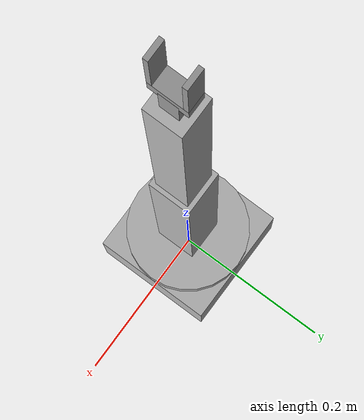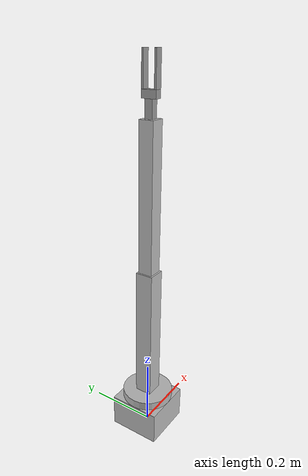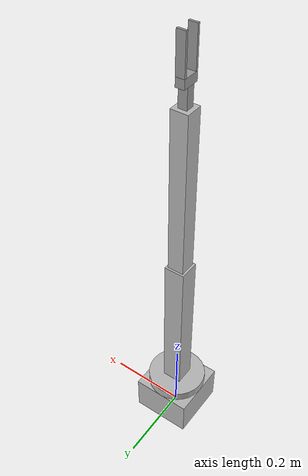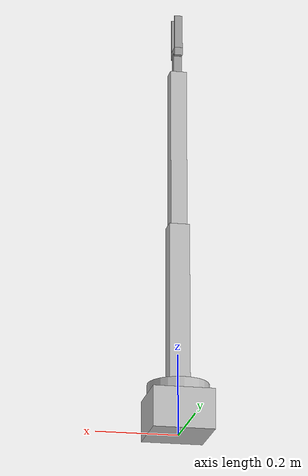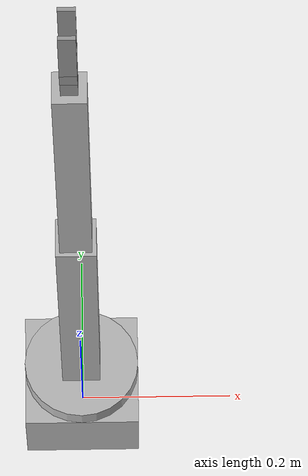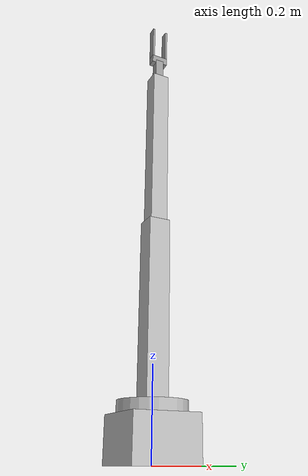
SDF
<?xml version='1.0'?>
<sdf version='1.6'>
  <model name='chessArm'>
    <link name='base'>
      <pose frame=''>0 0 0 0 -0 0</pose>
      <inertial>
        <pose frame=''>0 0 0 0 -0 0</pose>
        <mass>10</mass>
        <inertia>
          <ixx>0.166667</ixx>
          <ixy>0</ixy>
          <ixz>0</ixz>
          <iyy>0.166667</iyy>
          <iyz>0</iyz>
          <izz>0.166667</izz>
        </inertia>
      </inertial>
      <self_collide>0</self_collide>
      <enable_wind>0</enable_wind>
      <kinematic>0</kinematic>
      <visual name='base_fixed_joint_lump__chessArm__visual_visual'>
        <pose frame=''>0 0 0.05 0 -0 0</pose>
        <geometry>
          <box>
            <size>0.15 0.15 0.1</size>
          </box>
        </geometry>
        <transparency>0</transparency>
        <cast_shadows>1</cast_shadows>
      </visual>
      <collision name='base_fixed_joint_lump__chessArm__collision_collision'>
        <laser_retro>0</laser_retro>
        <max_contacts>10</max_contacts>
        <pose frame=''>0 0 0.05 0 -0 0</pose>
        <geometry>
          <box>
            <size>0.15 0.15 0.1</size>
          </box>
        </geometry>
        <surface>
          <friction>
            <ode>
              <mu>1</mu>
              <mu2>1</mu2>
              <fdir1>0 0 0</fdir1>
              <slip1>0</slip1>
              <slip2>0</slip2>
            </ode>
            <torsional>
              <coefficient>1</coefficient>
              <patch_radius>0</patch_radius>
              <surface_radius>0</surface_radius>
              <use_patch_radius>1</use_patch_radius>
              <ode>
                <slip>0</slip>
              </ode>
            </torsional>
          </friction>
          <bounce>
            <restitution_coefficient>0</restitution_coefficient>
            <threshold>1e+06</threshold>
          </bounce>
          <contact>
            <collide_without_contact>0</collide_without_contact>
            <collide_without_contact_bitmask>1</collide_without_contact_bitmask>
            <collide_bitmask>1</collide_bitmask>
            <ode>
              <soft_cfm>0</soft_cfm>
              <soft_erp>0.2</soft_erp>
              <kp>1e+13</kp>
              <kd>1</kd>
              <max_vel>0.01</max_vel>
              <min_depth>0</min_depth>
            </ode>
            <bullet>
              <split_impulse>1</split_impulse>
              <split_impulse_penetration_threshold>-0.01</split_impulse_penetration_threshold>
              <soft_cfm>0</soft_cfm>
              <soft_erp>0.2</soft_erp>
              <kp>1e+13</kp>
              <kd>1</kd>
            </bullet>
          </contact>
        </surface>
      </collision>
    </link>
    <link name='forearm'>
      <pose frame=''>-4e-06 0 0.525 0 -1e-05 -1e-05</pose>
      <inertial>
        <pose frame=''>0 0 0 0 -0 0</pose>
        <mass>0.01</mass>
        <inertia>
          <ixx>0.166667</ixx>
          <ixy>0</ixy>
          <ixz>0</ixz>
          <iyy>0.166667</iyy>
          <iyz>0</iyz>
          <izz>0.166667</izz>
        </inertia>
      </inertial>
      <self_collide>0</self_collide>
      <enable_wind>0</enable_wind>
      <kinematic>0</kinematic>
      <visual name='forearm_fixed_joint_lump__chessArm__visual_visual'>
        <pose frame=''>0 0 0.2 0 -0 0</pose>
        <geometry>
          <box>
            <size>0.04 0.04 0.4</size>
          </box>
        </geometry>
        <transparency>0</transparency>
        <cast_shadows>1</cast_shadows>
        <material>
          <emissive>0 0 0 1</emissive>
        </material>
      </visual>
      <collision name='forearm_fixed_joint_lump__chessArm__collision_collision'>
        <laser_retro>0</laser_retro>
        <max_contacts>10</max_contacts>
        <pose frame=''>0 0 0.2 0 -0 0</pose>
        <geometry>
          <box>
            <size>0.04 0.04 0.4</size>
          </box>
        </geometry>
        <surface>
          <friction>
            <ode>
              <mu>1</mu>
              <mu2>1</mu2>
              <fdir1>0 0 0</fdir1>
              <slip1>0</slip1>
              <slip2>0</slip2>
            </ode>
            <torsional>
              <coefficient>1</coefficient>
              <patch_radius>0</patch_radius>
              <surface_radius>0</surface_radius>
              <use_patch_radius>1</use_patch_radius>
              <ode>
                <slip>0</slip>
              </ode>
            </torsional>
          </friction>
          <bounce>
            <restitution_coefficient>0</restitution_coefficient>
            <threshold>1e+06</threshold>
          </bounce>
          <contact>
            <collide_without_contact>0</collide_without_contact>
            <collide_without_contact_bitmask>1</collide_without_contact_bitmask>
            <collide_bitmask>1</collide_bitmask>
            <ode>
              <soft_cfm>0</soft_cfm>
              <soft_erp>0.2</soft_erp>
              <kp>1e+13</kp>
              <kd>1</kd>
              <max_vel>0.01</max_vel>
              <min_depth>0</min_depth>
            </ode>
            <bullet>
              <split_impulse>1</split_impulse>
              <split_impulse_penetration_threshold>-0.01</split_impulse_penetration_threshold>
              <soft_cfm>0</soft_cfm>
              <soft_erp>0.2</soft_erp>
              <kp>1e+13</kp>
              <kd>1</kd>
            </bullet>
          </contact>
        </surface>
      </collision>
    </link>
    <link name='link_2'>
      <inertial>
        <mass>1</mass>
        <inertia>
          <ixx>0.166667</ixx>
          <ixy>0</ixy>
          <ixz>0</ixz>
          <iyy>0.166667</iyy>
          <iyz>0</iyz>
          <izz>0.166667</izz>
        </inertia>
        <pose frame=''>0 0 0 0 -0 0</pose>
      </inertial>
      <pose frame=''>-8e-06 0 0.95 0 -1e-05 -1e-05</pose>
      <gravity>1</gravity>
      <self_collide>0</self_collide>
      <kinematic>0</kinematic>
      <enable_wind>0</enable_wind>
      <visual name='visual'>
        <pose frame=''>0 0 0 0 -0 0</pose>
        <geometry>
          <box>
            <size>0.02 0.02 0.055</size>
          </box>
        </geometry>
        <material>
          <lighting>1</lighting>
          <script>
            <uri>file://media/materials/scripts/gazebo.material</uri>
            <name>Gazebo/Grey</name>
          </script>
          <shader type='vertex'>
            <normal_map>__default__</normal_map>
          </shader>
          <ambient>0.3 0.3 0.3 1</ambient>
          <diffuse>0.7 0.7 0.7 1</diffuse>
          <specular>0.01 0.01 0.01 1</specular>
          <emissive>0 0 0 1</emissive>
        </material>
        <transparency>0</transparency>
        <cast_shadows>1</cast_shadows>
      </visual>
      <collision name='collision'>
        <laser_retro>0</laser_retro>
        <max_contacts>10</max_contacts>
        <pose frame=''>0 0 0 0 -0 0</pose>
        <geometry>
          <box>
            <size>0.02 0.02 0.055</size>
          </box>
        </geometry>
        <surface>
          <friction>
            <ode>
              <mu>1</mu>
              <mu2>1</mu2>
              <fdir1>0 0 0</fdir1>
              <slip1>0</slip1>
              <slip2>0</slip2>
            </ode>
            <torsional>
              <coefficient>1</coefficient>
              <patch_radius>0</patch_radius>
              <surface_radius>0</surface_radius>
              <use_patch_radius>1</use_patch_radius>
              <ode>
                <slip>0</slip>
              </ode>
            </torsional>
          </friction>
          <bounce>
            <restitution_coefficient>0</restitution_coefficient>
            <threshold>1e+06</threshold>
          </bounce>
          <contact>
            <collide_without_contact>0</collide_without_contact>
            <collide_without_contact_bitmask>1</collide_without_contact_bitmask>
            <collide_bitmask>1</collide_bitmask>
            <ode>
              <soft_cfm>0</soft_cfm>
              <soft_erp>0.2</soft_erp>
              <kp>1e+13</kp>
              <kd>1</kd>
              <max_vel>0.01</max_vel>
              <min_depth>0</min_depth>
            </ode>
            <bullet>
              <split_impulse>1</split_impulse>
              <split_impulse_penetration_threshold>-0.01</split_impulse_penetration_threshold>
              <soft_cfm>0</soft_cfm>
              <soft_erp>0.2</soft_erp>
              <kp>1e+13</kp>
              <kd>1</kd>
            </bullet>
          </contact>
        </surface>
      </collision>
    </link>
    <link name='link_3'>
      <inertial>
        <mass>1</mass>
        <inertia>
          <ixx>0.166667</ixx>
          <ixy>0</ixy>
          <ixz>0</ixz>
          <iyy>0.166667</iyy>
          <iyz>0</iyz>
          <izz>0.166667</izz>
        </inertia>
        <pose frame=''>0 0 0 0 -0 0</pose>
      </inertial>
      <pose frame=''>-9e-06 0 0.98 0 -0 0</pose>
      <gravity>1</gravity>
      <self_collide>0</self_collide>
      <kinematic>0</kinematic>
      <enable_wind>0</enable_wind>
      <visual name='visual'>
        <pose frame=''>0 0 0 0 -0 0</pose>
        <geometry>
          <box>
            <size>0.02 0.04 0.02</size>
          </box>
        </geometry>
        <material>
          <lighting>1</lighting>
          <script>
            <uri>file://media/materials/scripts/gazebo.material</uri>
            <name>Gazebo/Grey</name>
          </script>
          <shader type='vertex'>
            <normal_map>__default__</normal_map>
          </shader>
          <ambient>0.3 0.3 0.3 1</ambient>
          <diffuse>0.7 0.7 0.7 1</diffuse>
          <specular>0.01 0.01 0.01 1</specular>
          <emissive>0 0 0 1</emissive>
        </material>
        <transparency>0</transparency>
        <cast_shadows>1</cast_shadows>
      </visual>
      <collision name='collision'>
        <laser_retro>0</laser_retro>
        <max_contacts>10</max_contacts>
        <pose frame=''>0 0 0 0 -0 0</pose>
        <geometry>
          <box>
            <size>0.02 0.04 0.02</size>
          </box>
        </geometry>
        <surface>
          <friction>
            <ode>
              <mu>1</mu>
              <mu2>1</mu2>
              <fdir1>0 0 0</fdir1>
              <slip1>0</slip1>
              <slip2>0</slip2>
            </ode>
            <torsional>
              <coefficient>1</coefficient>
              <patch_radius>0</patch_radius>
              <surface_radius>0</surface_radius>
              <use_patch_radius>1</use_patch_radius>
              <ode>
                <slip>0</slip>
              </ode>
            </torsional>
          </friction>
          <bounce>
            <restitution_coefficient>0</restitution_coefficient>
            <threshold>1e+06</threshold>
          </bounce>
          <contact>
            <collide_without_contact>0</collide_without_contact>
            <collide_without_contact_bitmask>1</collide_without_contact_bitmask>
            <collide_bitmask>1</collide_bitmask>
            <ode>
              <soft_cfm>0</soft_cfm>
              <soft_erp>0.2</soft_erp>
              <kp>1e+13</kp>
              <kd>1</kd>
              <max_vel>0.01</max_vel>
              <min_depth>0</min_depth>
            </ode>
            <bullet>
              <split_impulse>1</split_impulse>
              <split_impulse_penetration_threshold>-0.01</split_impulse_penetration_threshold>
              <soft_cfm>0</soft_cfm>
              <soft_erp>0.2</soft_erp>
              <kp>1e+13</kp>
              <kd>1</kd>
            </bullet>
          </contact>
        </surface>
      </collision>
    </link>
    <link name='link_4'>
      <inertial>
        <mass>1</mass>
        <inertia>
          <ixx>0.166667</ixx>
          <ixy>0</ixy>
          <ixz>0</ixz>
          <iyy>0.166667</iyy>
          <iyz>0</iyz>
          <izz>0.166667</izz>
        </inertia>
        <pose frame=''>0 0 0 0 -0 0</pose>
      </inertial>
      <pose frame=''>-9e-06 0.0175 1.0325 0 -0 0</pose>
      <gravity>1</gravity>
      <self_collide>0</self_collide>
      <kinematic>0</kinematic>
      <enable_wind>0</enable_wind>
      <visual name='visual'>
        <pose frame=''>0 0 0 0 -0 0</pose>
        <geometry>
          <box>
            <size>0.02 0.005 0.085</size>
          </box>
        </geometry>
        <material>
          <lighting>1</lighting>
          <script>
            <uri>file://media/materials/scripts/gazebo.material</uri>
            <name>Gazebo/Grey</name>
          </script>
          <shader type='vertex'>
            <normal_map>__default__</normal_map>
          </shader>
          <ambient>0.3 0.3 0.3 1</ambient>
          <diffuse>0.7 0.7 0.7 1</diffuse>
          <specular>0.01 0.01 0.01 1</specular>
          <emissive>0 0 0 1</emissive>
        </material>
        <transparency>0</transparency>
        <cast_shadows>1</cast_shadows>
      </visual>
      <collision name='collision'>
        <laser_retro>0</laser_retro>
        <max_contacts>10</max_contacts>
        <pose frame=''>0 0 0 0 -0 0</pose>
        <geometry>
          <box>
            <size>0.02 0.005 0.085</size>
          </box>
        </geometry>
        <surface>
          <friction>
            <ode>
              <mu>1</mu>
              <mu2>1</mu2>
              <fdir1>0 0 0</fdir1>
              <slip1>0</slip1>
              <slip2>0</slip2>
            </ode>
            <torsional>
              <coefficient>1</coefficient>
              <patch_radius>0</patch_radius>
              <surface_radius>0</surface_radius>
              <use_patch_radius>1</use_patch_radius>
              <ode>
                <slip>0</slip>
              </ode>
            </torsional>
          </friction>
          <bounce>
            <restitution_coefficient>0</restitution_coefficient>
            <threshold>1e+06</threshold>
          </bounce>
          <contact>
            <collide_without_contact>0</collide_without_contact>
            <collide_without_contact_bitmask>1</collide_without_contact_bitmask>
            <collide_bitmask>1</collide_bitmask>
            <ode>
              <soft_cfm>0</soft_cfm>
              <soft_erp>0.2</soft_erp>
              <kp>1e+13</kp>
              <kd>1</kd>
              <max_vel>0.01</max_vel>
              <min_depth>0</min_depth>
            </ode>
            <bullet>
              <split_impulse>1</split_impulse>
              <split_impulse_penetration_threshold>-0.01</split_impulse_penetration_threshold>
              <soft_cfm>0</soft_cfm>
              <soft_erp>0.2</soft_erp>
              <kp>1e+13</kp>
              <kd>1</kd>
            </bullet>
          </contact>
        </surface>
      </collision>
    </link>
    <link name='link_4_clone'>
      <inertial>
        <mass>1</mass>
        <inertia>
          <ixx>0.166667</ixx>
          <ixy>0</ixy>
          <ixz>0</ixz>
          <iyy>0.166667</iyy>
          <iyz>0</iyz>
          <izz>0.166667</izz>
        </inertia>
        <pose frame=''>0 0 0 0 -0 0</pose>
      </inertial>
      <pose frame=''>-9e-06 -0.0175 1.0325 0 -0 0</pose>
      <gravity>1</gravity>
      <self_collide>0</self_collide>
      <kinematic>0</kinematic>
      <enable_wind>0</enable_wind>
      <visual name='visual'>
        <pose frame=''>0 0 0 0 -0 0</pose>
        <geometry>
          <box>
            <size>0.02 0.005 0.085</size>
          </box>
        </geometry>
        <material>
          <lighting>1</lighting>
          <script>
            <uri>file://media/materials/scripts/gazebo.material</uri>
            <name>Gazebo/Grey</name>
          </script>
          <shader type='vertex'>
            <normal_map>__default__</normal_map>
          </shader>
          <ambient>0.3 0.3 0.3 1</ambient>
          <diffuse>0.7 0.7 0.7 1</diffuse>
          <specular>0.01 0.01 0.01 1</specular>
          <emissive>0 0 0 1</emissive>
        </material>
        <transparency>0</transparency>
        <cast_shadows>1</cast_shadows>
      </visual>
      <collision name='collision'>
        <laser_retro>0</laser_retro>
        <max_contacts>10</max_contacts>
        <pose frame=''>0 0 0 0 -0 0</pose>
        <geometry>
          <box>
            <size>0.02 0.005 0.085</size>
          </box>
        </geometry>
        <surface>
          <friction>
            <ode>
              <mu>1</mu>
              <mu2>1</mu2>
              <fdir1>0 0 0</fdir1>
              <slip1>0</slip1>
              <slip2>0</slip2>
            </ode>
            <torsional>
              <coefficient>1</coefficient>
              <patch_radius>0</patch_radius>
              <surface_radius>0</surface_radius>
              <use_patch_radius>1</use_patch_radius>
              <ode>
                <slip>0</slip>
              </ode>
            </torsional>
          </friction>
          <bounce>
            <restitution_coefficient>0</restitution_coefficient>
            <threshold>1e+06</threshold>
          </bounce>
          <contact>
            <collide_without_contact>0</collide_without_contact>
            <collide_without_contact_bitmask>1</collide_without_contact_bitmask>
            <collide_bitmask>1</collide_bitmask>
            <ode>
              <soft_cfm>0</soft_cfm>
              <soft_erp>0.2</soft_erp>
              <kp>1e+13</kp>
              <kd>1</kd>
              <max_vel>0.01</max_vel>
              <min_depth>0</min_depth>
            </ode>
            <bullet>
              <split_impulse>1</split_impulse>
              <split_impulse_penetration_threshold>-0.01</split_impulse_penetration_threshold>
              <soft_cfm>0</soft_cfm>
              <soft_erp>0.2</soft_erp>
              <kp>1e+13</kp>
              <kd>1</kd>
            </bullet>
          </contact>
        </surface>
      </collision>
    </link>
    <link name='swivel_base'>
      <pose frame=''>0 0 0.1125 0 -0 0</pose>
      <inertial>
        <pose frame=''>0 0 0 0 -0 0</pose>
        <mass>1</mass>
        <inertia>
          <ixx>0.145833</ixx>
          <ixy>0</ixy>
          <ixz>0</ixz>
          <iyy>0.145833</iyy>
          <iyz>0</iyz>
          <izz>0.125</izz>
        </inertia>
      </inertial>
      <self_collide>0</self_collide>
      <enable_wind>0</enable_wind>
      <kinematic>0</kinematic>
      <visual name='swivel_base_fixed_joint_lump__chessArm__visual_visual'>
        <pose frame=''>0 0 0 0 -0 0</pose>
        <geometry>
          <cylinder>
            <length>0.025</length>
            <radius>0.075</radius>
          </cylinder>
        </geometry>
        <transparency>0</transparency>
        <cast_shadows>1</cast_shadows>
      </visual>
      <collision name='swivel_base_fixed_joint_lump__chessArm__collision_collision'>
        <laser_retro>0</laser_retro>
        <max_contacts>10</max_contacts>
        <pose frame=''>0 0 0 0 -0 0</pose>
        <geometry>
          <cylinder>
            <radius>0.075</radius>
            <length>0.025</length>
          </cylinder>
        </geometry>
        <surface>
          <friction>
            <ode>
              <mu>1</mu>
              <mu2>1</mu2>
              <fdir1>0 0 0</fdir1>
              <slip1>0</slip1>
              <slip2>0</slip2>
            </ode>
            <torsional>
              <coefficient>1</coefficient>
              <patch_radius>0</patch_radius>
              <surface_radius>0</surface_radius>
              <use_patch_radius>1</use_patch_radius>
              <ode>
                <slip>0</slip>
              </ode>
            </torsional>
          </friction>
          <bounce>
            <restitution_coefficient>0</restitution_coefficient>
            <threshold>1e+06</threshold>
          </bounce>
          <contact>
            <collide_without_contact>0</collide_without_contact>
            <collide_without_contact_bitmask>1</collide_without_contact_bitmask>
            <collide_bitmask>1</collide_bitmask>
            <ode>
              <soft_cfm>0</soft_cfm>
              <soft_erp>0.2</soft_erp>
              <kp>1e+13</kp>
              <kd>1</kd>
              <max_vel>0.01</max_vel>
              <min_depth>0</min_depth>
            </ode>
            <bullet>
              <split_impulse>1</split_impulse>
              <split_impulse_penetration_threshold>-0.01</split_impulse_penetration_threshold>
              <soft_cfm>0</soft_cfm>
              <soft_erp>0.2</soft_erp>
              <kp>1e+13</kp>
              <kd>1</kd>
            </bullet>
          </contact>
        </surface>
      </collision>
    </link>
    <link name='upper_arm'>
      <pose frame=''>0 0 0.125 0 -1e-05 -1e-05</pose>
      <inertial>
        <pose frame=''>0 0 0 0 -0 0</pose>
        <mass>0.01</mass>
        <inertia>
          <ixx>0.166667</ixx>
          <ixy>0</ixy>
          <ixz>0</ixz>
          <iyy>0.166667</iyy>
          <iyz>0</iyz>
          <izz>0.166667</izz>
        </inertia>
      </inertial>
      <self_collide>0</self_collide>
      <enable_wind>0</enable_wind>
      <kinematic>0</kinematic>
      <visual name='upper_arm_fixed_joint_lump__chessArm__visual_visual'>
        <pose frame=''>0 0 0.2 0 -0 0</pose>
        <geometry>
          <box>
            <size>0.05 0.05 0.4</size>
          </box>
        </geometry>
        <transparency>0</transparency>
        <cast_shadows>1</cast_shadows>
      </visual>
      <collision name='upper_arm_fixed_joint_lump__chessArm__collision_collision'>
        <laser_retro>0</laser_retro>
        <max_contacts>10</max_contacts>
        <pose frame=''>0 0 0.2 0 -0 0</pose>
        <geometry>
          <box>
            <size>0.05 0.05 0.4</size>
          </box>
        </geometry>
        <surface>
          <friction>
            <ode>
              <mu>1</mu>
              <mu2>1</mu2>
              <fdir1>0 0 0</fdir1>
              <slip1>0</slip1>
              <slip2>0</slip2>
            </ode>
            <torsional>
              <coefficient>1</coefficient>
              <patch_radius>0</patch_radius>
              <surface_radius>0</surface_radius>
              <use_patch_radius>1</use_patch_radius>
              <ode>
                <slip>0</slip>
              </ode>
            </torsional>
          </friction>
          <bounce>
            <restitution_coefficient>0</restitution_coefficient>
            <threshold>1e+06</threshold>
          </bounce>
          <contact>
            <collide_without_contact>0</collide_without_contact>
            <collide_without_contact_bitmask>1</collide_without_contact_bitmask>
            <collide_bitmask>1</collide_bitmask>
            <ode>
              <soft_cfm>0</soft_cfm>
              <soft_erp>0.2</soft_erp>
              <kp>1e+13</kp>
              <kd>1</kd>
              <max_vel>0.01</max_vel>
              <min_depth>0</min_depth>
            </ode>
            <bullet>
              <split_impulse>1</split_impulse>
              <split_impulse_penetration_threshold>-0.01</split_impulse_penetration_threshold>
              <soft_cfm>0</soft_cfm>
              <soft_erp>0.2</soft_erp>
              <kp>1e+13</kp>
              <kd>1</kd>
            </bullet>
          </contact>
        </surface>
      </collision>
    </link>
    <joint name='elbow' type='revolute'>
      <parent>upper_arm</parent>
      <child>forearm</child>
      <pose frame=''>0 0 0 0 -0 0</pose>
      <axis>
        <xyz>1e-05 1 0</xyz>
        <use_parent_model_frame>1</use_parent_model_frame>
        <limit>
          <lower>-1.79769e+308</lower>
          <upper>1.79769e+308</upper>
          <effort>-1</effort>
          <velocity>-1</velocity>
        </limit>
        <dynamics>
          <spring_reference>0</spring_reference>
          <spring_stiffness>0</spring_stiffness>
          <damping>0</damping>
          <friction>0</friction>
        </dynamics>
      </axis>
      <physics>
        <ode>
          <limit>
            <cfm>0</cfm>
            <erp>0.2</erp>
          </limit>
          <suspension>
            <cfm>0</cfm>
            <erp>0.2</erp>
          </suspension>
        </ode>
      </physics>
    </joint>
    <joint name='wrist' type='revolute'>
      <parent>forearm</parent>
      <child>link_2</child>
      <pose frame=''>0 0 -0.025 0 -0 0</pose>
      <axis>
        <xyz>0 1 0</xyz>
        <use_parent_model_frame>0</use_parent_model_frame>
        <limit>
          <lower>-1.79769e+308</lower>
          <upper>1.79769e+308</upper>
          <effort>-1</effort>
          <velocity>-1</velocity>
        </limit>
        <dynamics>
          <spring_reference>0</spring_reference>
          <spring_stiffness>0</spring_stiffness>
          <damping>0</damping>
          <friction>0</friction>
        </dynamics>
      </axis>
      <physics>
        <ode>
          <limit>
            <cfm>0</cfm>
            <erp>0.2</erp>
          </limit>
          <suspension>
            <cfm>0</cfm>
            <erp>0.2</erp>
          </suspension>
        </ode>
      </physics>
    </joint>
    <joint name='hand_joint' type='fixed'>
      <parent>link_2</parent>
      <child>link_3</child>
      <pose frame=''>0 0 0 0 -0 0</pose>
      <physics>
        <ode>
          <limit>
            <cfm>0</cfm>
            <erp>0.2</erp>
          </limit>
          <suspension>
            <cfm>0</cfm>
            <erp>0.2</erp>
          </suspension>
        </ode>
      </physics>
    </joint>
    <joint name='link_3_JOINT_6' type='revolute'>
      <parent>link_3</parent>
      <child>link_4_clone</child>
      <pose frame=''>0 0 -0.045 0 -0 0</pose>
      <axis>
        <xyz>1 0 0</xyz>
        <use_parent_model_frame>0</use_parent_model_frame>
        <limit>
          <lower>-1.79769e+308</lower>
          <upper>1.79769e+308</upper>
          <effort>-1</effort>
          <velocity>-1</velocity>
        </limit>
        <dynamics>
          <spring_reference>0</spring_reference>
          <spring_stiffness>0</spring_stiffness>
          <damping>0</damping>
        </dynamics>
      </axis>
      <physics>
        <ode>
          <limit>
            <cfm>0</cfm>
            <erp>0.2</erp>
          </limit>
          <suspension>
            <cfm>0</cfm>
            <erp>0.2</erp>
          </suspension>
        </ode>
      </physics>
    </joint>
    <joint name='link_3_JOINT_7' type='revolute'>
      <parent>link_3</parent>
      <child>link_4</child>
      <pose frame=''>0 0 -0.0425 0 -0 0</pose>
      <axis>
        <xyz>1 0 0</xyz>
        <use_parent_model_frame>0</use_parent_model_frame>
        <limit>
          <lower>-1.79769e+308</lower>
          <upper>1.79769e+308</upper>
          <effort>-1</effort>
          <velocity>-1</velocity>
        </limit>
        <dynamics>
          <spring_reference>0</spring_reference>
          <spring_stiffness>0</spring_stiffness>
          <damping>0</damping>
        </dynamics>
      </axis>
      <physics>
        <ode>
          <limit>
            <cfm>0</cfm>
            <erp>0.2</erp>
          </limit>
          <suspension>
            <cfm>0</cfm>
            <erp>0.2</erp>
          </suspension>
        </ode>
      </physics>
    </joint>
    <joint name='shoulder' type='revolute'>
      <parent>swivel_base</parent>
      <child>upper_arm</child>
      <pose frame=''>0 0 0 0 -0 0</pose>
      <axis>
        <xyz>1e-05 1 0</xyz>
        <use_parent_model_frame>1</use_parent_model_frame>
        <limit>
          <lower>-1.79769e+308</lower>
          <upper>1.79769e+308</upper>
          <effort>-1</effort>
          <velocity>-1</velocity>
        </limit>
        <dynamics>
          <spring_reference>0</spring_reference>
          <spring_stiffness>0</spring_stiffness>
          <damping>0</damping>
          <friction>0</friction>
        </dynamics>
      </axis>
      <physics>
        <ode>
          <limit>
            <cfm>0</cfm>
            <erp>0.2</erp>
          </limit>
          <suspension>
            <cfm>0</cfm>
            <erp>0.2</erp>
          </suspension>
        </ode>
      </physics>
    </joint>
    <joint name='swivel' type='revolute'>
      <parent>base</parent>
      <child>swivel_base</child>
      <pose frame=''>0 0 0 0 -0 0</pose>
      <axis>
        <xyz>0 0 1</xyz>
        <use_parent_model_frame>1</use_parent_model_frame>
        <limit>
          <lower>-1.79769e+308</lower>
          <upper>1.79769e+308</upper>
          <effort>-1</effort>
          <velocity>-1</velocity>
        </limit>
        <dynamics>
          <spring_reference>0</spring_reference>
          <spring_stiffness>0</spring_stiffness>
          <damping>0</damping>
          <friction>0</friction>
        </dynamics>
      </axis>
      <physics>
        <ode>
          <limit>
            <cfm>0</cfm>
            <erp>0.2</erp>
          </limit>
          <suspension>
            <cfm>0</cfm>
            <erp>0.2</erp>
          </suspension>
        </ode>
      </physics>
    </joint>
    <static>0</static>
    <allow_auto_disable>1</allow_auto_disable>
  </model>
</sdf>
